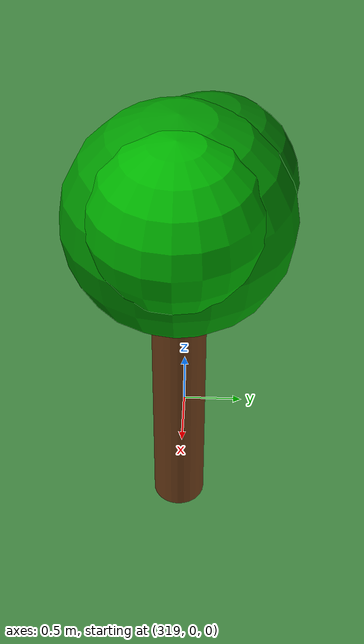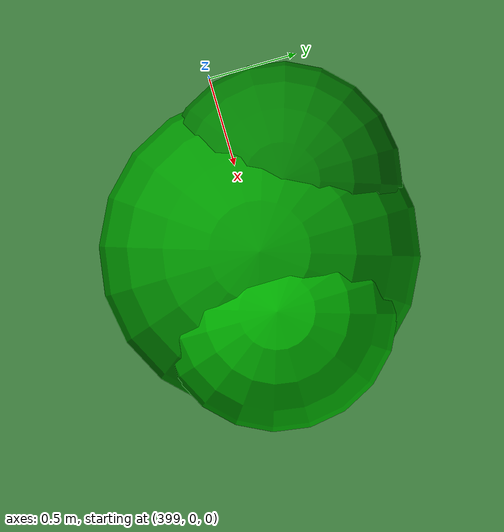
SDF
<sdf version="1.9">
 <world name="validation_world">
  <physics type="dart"><max_step_size>0.004</max_step_size><real_time_factor>1</real_time_factor></physics>
  <plugin filename="gz-sim-physics-system" name="gz::sim::systems::Physics"/>
  <plugin filename="gz-sim-user-commands-system" name="gz::sim::systems::UserCommands"/>
  <plugin filename="gz-sim-scene-broadcaster-system" name="gz::sim::systems::SceneBroadcaster"/>
  <scene>
   <ambient>0.6 0.6 0.6 1</ambient>
   <background>0.7 0.7 0.7 1</background>
   <shadows>false</shadows>
   <grid>false</grid>
  </scene>
  <light type="directional" name="sun">
   <cast_shadows>false</cast_shadows>
   <pose>0 0 10 0 0 0</pose>
   <diffuse>0.8 0.8 0.8 1</diffuse>
   <specular>0.2 0.2 0.2 1</specular>
   <attenuation>
    <range>1000</range>
    <constant>0.9</constant>
    <linear>0.01</linear>
    <quadratic>0.001</quadratic>
   </attenuation>
   <direction>-0.5 0.1 -0.9</direction>
  </light>
  <model name="ground_plane">
   <static>true</static>
   <link name="link">
    <collision name="collision">
     <geometry><plane><normal>0 0 1</normal><size>500 500</size></plane></geometry>
    </collision>
    <visual name="visual">
     <geometry><plane><normal>0 0 1</normal><size>500 500</size></plane></geometry>
     <material><ambient>0.25 0.52 0.25 1</ambient><diffuse>0.25 0.52 0.25 1</diffuse></material>
    </visual>
   </link>
  </model>
  <model name="validation_tree_1">
   <static>true</static>
   <pose>320.00 0.00 0.00 0 0 0</pose>
   <link name="link">
    <visual name="trunk">
     <pose>0 0 1.25 0 0 0</pose>
     <geometry><cylinder><radius>0.2</radius><length>2.5</length></cylinder></geometry>
     <material><ambient>0.45 0.25 0.1 1</ambient><diffuse>0.45 0.25 0.1 1</diffuse></material>
    </visual>
    <visual name="leaves1">
     <pose>0 0 2.75 0 0 0</pose>
     <geometry><sphere><radius>0.8</radius></sphere></geometry>
     <material><ambient>0.0 0.6 0.0 1</ambient><diffuse>0.0 0.6 0.0 1</diffuse></material>
    </visual>
    <visual name="leaves2">
     <pose>0.3 0 2.95 0 0 0</pose>
     <geometry><sphere><radius>0.6</radius></sphere></geometry>
     <material><ambient>0.0 0.7 0.0 1</ambient><diffuse>0.0 0.7 0.0 1</diffuse></material>
    </visual>
    <visual name="leaves3">
     <pose>-0.3 0.2 2.85 0 0 0</pose>
     <geometry><sphere><radius>0.6</radius></sphere></geometry>
     <material><ambient>0.0 0.5 0.0 1</ambient><diffuse>0.0 0.5 0.0 1</diffuse></material>
    </visual>
   </link>
  </model>
  <model name="validation_tree_2">
   <static>true</static>
   <pose>360.00 0.00 0.00 0 0 0</pose>
   <link name="link">
    <visual name="trunk">
     <pose>0 0 1.25 0 0 0</pose>
     <geometry><cylinder><radius>0.2</radius><length>2.5</length></cylinder></geometry>
     <material><ambient>0.45 0.25 0.1 1</ambient><diffuse>0.45 0.25 0.1 1</diffuse></material>
    </visual>
    <visual name="leaves1">
     <pose>0 0 2.75 0 0 0</pose>
     <geometry><sphere><radius>0.8</radius></sphere></geometry>
     <material><ambient>0.0 0.6 0.0 1</ambient><diffuse>0.0 0.6 0.0 1</diffuse></material>
    </visual>
    <visual name="leaves2">
     <pose>0.3 0 2.95 0 0 0</pose>
     <geometry><sphere><radius>0.6</radius></sphere></geometry>
     <material><ambient>0.0 0.7 0.0 1</ambient><diffuse>0.0 0.7 0.0 1</diffuse></material>
    </visual>
    <visual name="leaves3">
     <pose>-0.3 0.2 2.85 0 0 0</pose>
     <geometry><sphere><radius>0.6</radius></sphere></geometry>
     <material><ambient>0.0 0.5 0.0 1</ambient><diffuse>0.0 0.5 0.0 1</diffuse></material>
    </visual>
   </link>
  </model>
  <model name="validation_tree_3">
   <static>true</static>
   <pose>400.00 0.00 0.00 0 0 0</pose>
   <link name="link">
    <visual name="trunk">
     <pose>0 0 1.25 0 0 0</pose>
     <geometry><cylinder><radius>0.2</radius><length>2.5</length></cylinder></geometry>
     <material><ambient>0.45 0.25 0.1 1</ambient><diffuse>0.45 0.25 0.1 1</diffuse></material>
    </visual>
    <visual name="leaves1">
     <pose>0 0 2.75 0 0 0</pose>
     <geometry><sphere><radius>0.8</radius></sphere></geometry>
     <material><ambient>0.0 0.6 0.0 1</ambient><diffuse>0.0 0.6 0.0 1</diffuse></material>
    </visual>
    <visual name="leaves2">
     <pose>0.3 0 2.95 0 0 0</pose>
     <geometry><sphere><radius>0.6</radius></sphere></geometry>
     <material><ambient>0.0 0.7 0.0 1</ambient><diffuse>0.0 0.7 0.0 1</diffuse></material>
    </visual>
    <visual name="leaves3">
     <pose>-0.3 0.2 2.85 0 0 0</pose>
     <geometry><sphere><radius>0.6</radius></sphere></geometry>
     <material><ambient>0.0 0.5 0.0 1</ambient><diffuse>0.0 0.5 0.0 1</diffuse></material>
    </visual>
   </link>
  </model>
  <model name="validation_tree_4">
   <static>true</static>
   <pose>440.00 0.00 0.00 0 0 0</pose>
   <link name="link">
    <visual name="trunk">
     <pose>0 0 1.25 0 0 0</pose>
     <geometry><cylinder><radius>0.2</radius><length>2.5</length></cylinder></geometry>
     <material><ambient>0.45 0.25 0.1 1</ambient><diffuse>0.45 0.25 0.1 1</diffuse></material>
    </visual>
    <visual name="leaves1">
     <pose>0 0 2.75 0 0 0</pose>
     <geometry><sphere><radius>0.8</radius></sphere></geometry>
     <material><ambient>0.0 0.6 0.0 1</ambient><diffuse>0.0 0.6 0.0 1</diffuse></material>
    </visual>
    <visual name="leaves2">
     <pose>0.3 0 2.95 0 0 0</pose>
     <geometry><sphere><radius>0.6</radius></sphere></geometry>
     <material><ambient>0.0 0.7 0.0 1</ambient><diffuse>0.0 0.7 0.0 1</diffuse></material>
    </visual>
    <visual name="leaves3">
     <pose>-0.3 0.2 2.85 0 0 0</pose>
     <geometry><sphere><radius>0.6</radius></sphere></geometry>
     <material><ambient>0.0 0.5 0.0 1</ambient><diffuse>0.0 0.5 0.0 1</diffuse></material>
    </visual>
   </link>
  </model>
  <model name="validation_tree_5">
   <static>true</static>
   <pose>480.00 0.00 0.00 0 0 0</pose>
   <link name="link">
    <visual name="trunk">
     <pose>0 0 1.25 0 0 0</pose>
     <geometry><cylinder><radius>0.2</radius><length>2.5</length></cylinder></geometry>
     <material><ambient>0.45 0.25 0.1 1</ambient><diffuse>0.45 0.25 0.1 1</diffuse></material>
    </visual>
    <visual name="leaves1">
     <pose>0 0 2.75 0 0 0</pose>
     <geometry><sphere><radius>0.8</radius></sphere></geometry>
     <material><ambient>0.0 0.6 0.0 1</ambient><diffuse>0.0 0.6 0.0 1</diffuse></material>
    </visual>
    <visual name="leaves2">
     <pose>0.3 0 2.95 0 0 0</pose>
     <geometry><sphere><radius>0.6</radius></sphere></geometry>
     <material><ambient>0.0 0.7 0.0 1</ambient><diffuse>0.0 0.7 0.0 1</diffuse></material>
    </visual>
    <visual name="leaves3">
     <pose>-0.3 0.2 2.85 0 0 0</pose>
     <geometry><sphere><radius>0.6</radius></sphere></geometry>
     <material><ambient>0.0 0.5 0.0 1</ambient><diffuse>0.0 0.5 0.0 1</diffuse></material>
    </visual>
   </link>
  </model>
 </world>
</sdf>
